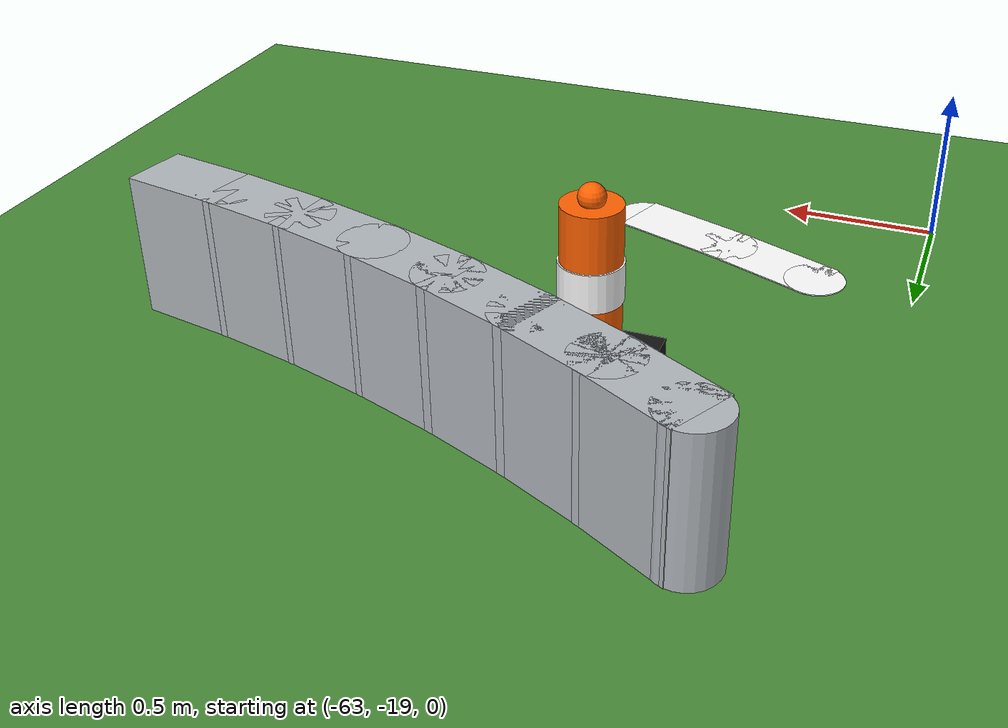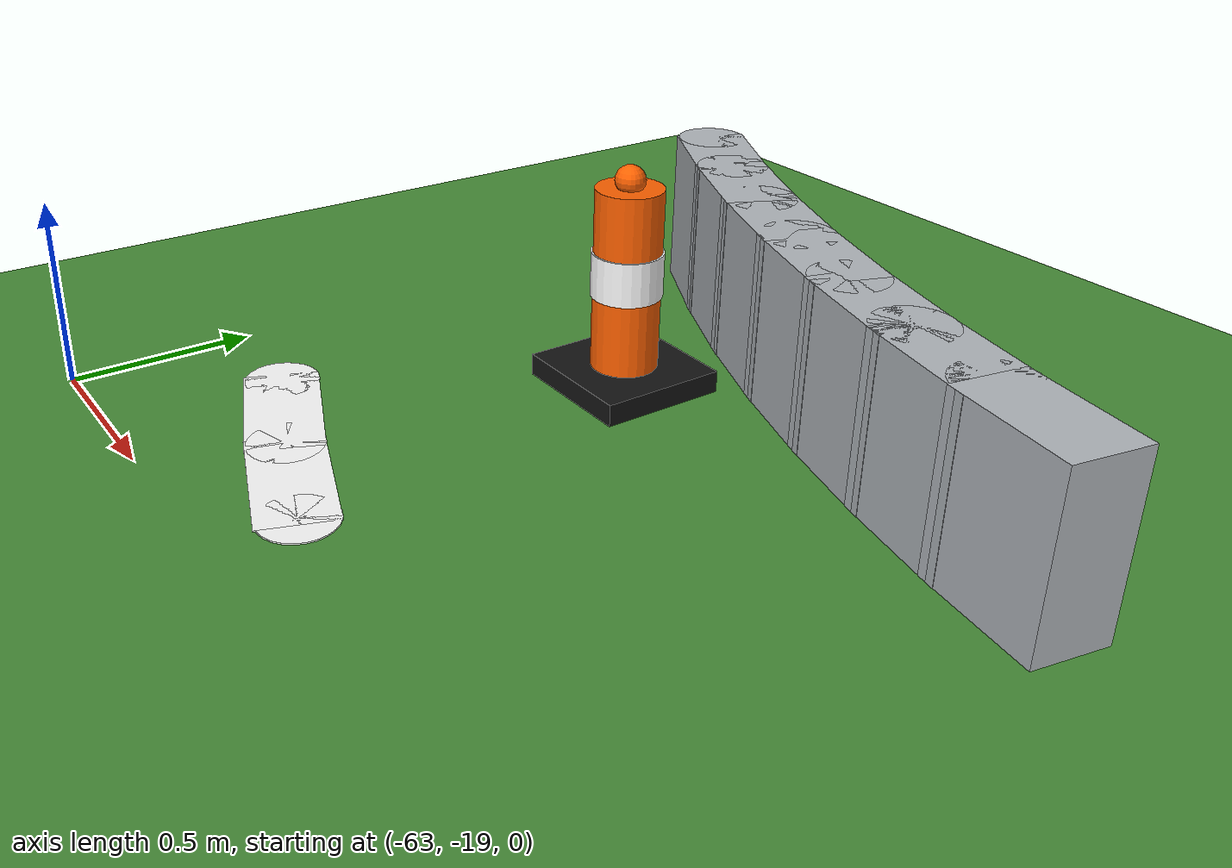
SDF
<sdf version="1.6">
 <world name="sem_silesia_ring_2026">
  <model name="ground_plane">
   <static>true</static>
   <link name="link">
    <collision name="collision">
     <geometry><plane><normal>0 0 1</normal><size>600 600</size></plane></geometry>
     <surface><friction><ode><mu>0.6</mu><mu2>0.6</mu2></ode></friction></surface>
    </collision>
    <visual name="visual">
     <geometry><plane><normal>0 0 1</normal><size>600 600</size></plane></geometry>
     <material><ambient>0.28 0.55 0.22 1</ambient><diffuse>0.28 0.55 0.22 1</diffuse></material>
    </visual>
   </link>
  </model>
  <model name="wl_Li_jnt52">
   <static>true</static>
   <pose>-62.6845 -18.5294 0.0050 0 0 0</pose>
   <link name="link">
    <visual name="v">
     <geometry><cylinder><radius>0.1000</radius><length>0.0040</length></cylinder></geometry>
     <material><ambient>1 1 1 1</ambient><diffuse>1 1 1 1</diffuse></material>
    </visual>
    <collision name="c">
     <geometry><cylinder><radius>0.1000</radius><length>0.0040</length></cylinder></geometry>
     <surface><friction><ode><mu>0.9</mu><mu2>0.9</mu2></ode></friction></surface>
    </collision>
   </link>
  </model>
  <model name="wl_Li_s52">
   <static>true</static>
   <pose>-62.5257 -18.5976 0.0050 0 0 5.8905</pose>
   <link name="link">
    <visual name="v">
     <geometry><box><size>0.4008 0.2000 0.0040</size></box></geometry>
     <material><ambient>1 1 1 1</ambient><diffuse>1 1 1 1</diffuse></material>
    </visual>
    <collision name="c">
     <geometry><box><size>0.4008 0.2000 0.0040</size></box></geometry>
     <surface><friction><ode><mu>0.9</mu><mu2>0.9</mu2></ode></friction></surface>
    </collision>
   </link>
  </model>
  <model name="wl_Li_jnt53">
   <static>true</static>
   <pose>-62.3652 -18.6616 0.0050 0 0 0</pose>
   <link name="link">
    <visual name="v">
     <geometry><cylinder><radius>0.1000</radius><length>0.0040</length></cylinder></geometry>
     <material><ambient>1 1 1 1</ambient><diffuse>1 1 1 1</diffuse></material>
    </visual>
    <collision name="c">
     <geometry><cylinder><radius>0.1000</radius><length>0.0040</length></cylinder></geometry>
     <surface><friction><ode><mu>0.9</mu><mu2>0.9</mu2></ode></friction></surface>
    </collision>
   </link>
  </model>
  <model name="wl_Li_s53">
   <static>true</static>
   <pose>-62.2031 -18.7214 0.0050 0 0 5.9428</pose>
   <link name="link">
    <visual name="v">
     <geometry><box><size>0.4008 0.2000 0.0040</size></box></geometry>
     <material><ambient>1 1 1 1</ambient><diffuse>1 1 1 1</diffuse></material>
    </visual>
    <collision name="c">
     <geometry><box><size>0.4008 0.2000 0.0040</size></box></geometry>
     <surface><friction><ode><mu>0.9</mu><mu2>0.9</mu2></ode></friction></surface>
    </collision>
   </link>
  </model>
  <model name="wl_Li_jnt54">
   <static>true</static>
   <pose>-62.0395 -18.7770 0.0050 0 0 0</pose>
   <link name="link">
    <visual name="v">
     <geometry><cylinder><radius>0.1000</radius><length>0.0040</length></cylinder></geometry>
     <material><ambient>1 1 1 1</ambient><diffuse>1 1 1 1</diffuse></material>
    </visual>
    <collision name="c">
     <geometry><cylinder><radius>0.1000</radius><length>0.0040</length></cylinder></geometry>
     <surface><friction><ode><mu>0.9</mu><mu2>0.9</mu2></ode></friction></surface>
    </collision>
   </link>
  </model>
  <model name="arm_Li_jnt50">
   <static>true</static>
   <pose>-62.6500 -17.0899 0.2250 0 0 0</pose>
   <link name="link">
    <visual name="v">
     <geometry><cylinder><radius>0.1000</radius><length>0.4500</length></cylinder></geometry>
     <material><ambient>0.70 0.72 0.74 1</ambient><diffuse>0.70 0.72 0.74 1</diffuse></material>
    </visual>
    <collision name="c">
     <geometry><cylinder><radius>0.1000</radius><length>0.4500</length></cylinder></geometry>
     <surface><friction><ode><mu>0.9</mu><mu2>0.9</mu2></ode></friction></surface>
    </collision>
   </link>
  </model>
  <model name="arm_Li_s50">
   <static>true</static>
   <pose>-62.5289 -17.1577 0.2250 0 0 5.7858</pose>
   <link name="link">
    <visual name="v">
     <geometry><box><size>0.3327 0.2000 0.4500</size></box></geometry>
     <material><ambient>0.70 0.72 0.74 1</ambient><diffuse>0.70 0.72 0.74 1</diffuse></material>
    </visual>
    <collision name="c">
     <geometry><box><size>0.3327 0.2000 0.4500</size></box></geometry>
     <surface><friction><ode><mu>0.9</mu><mu2>0.9</mu2></ode></friction></surface>
    </collision>
   </link>
  </model>
  <model name="arm_Li_jnt51">
   <static>true</static>
   <pose>-62.4061 -17.2223 0.2250 0 0 0</pose>
   <link name="link">
    <visual name="v">
     <geometry><cylinder><radius>0.1000</radius><length>0.4500</length></cylinder></geometry>
     <material><ambient>0.70 0.72 0.74 1</ambient><diffuse>0.70 0.72 0.74 1</diffuse></material>
    </visual>
    <collision name="c">
     <geometry><cylinder><radius>0.1000</radius><length>0.4500</length></cylinder></geometry>
     <surface><friction><ode><mu>0.9</mu><mu2>0.9</mu2></ode></friction></surface>
    </collision>
   </link>
  </model>
  <model name="arm_Li_s51">
   <static>true</static>
   <pose>-62.2817 -17.2837 0.2250 0 0 5.8381</pose>
   <link name="link">
    <visual name="v">
     <geometry><box><size>0.3327 0.2000 0.4500</size></box></geometry>
     <material><ambient>0.70 0.72 0.74 1</ambient><diffuse>0.70 0.72 0.74 1</diffuse></material>
    </visual>
    <collision name="c">
     <geometry><box><size>0.3327 0.2000 0.4500</size></box></geometry>
     <surface><friction><ode><mu>0.9</mu><mu2>0.9</mu2></ode></friction></surface>
    </collision>
   </link>
  </model>
  <model name="arm_Li_jnt52">
   <static>true</static>
   <pose>-62.1557 -17.3418 0.2250 0 0 0</pose>
   <link name="link">
    <visual name="v">
     <geometry><cylinder><radius>0.1000</radius><length>0.4500</length></cylinder></geometry>
     <material><ambient>0.70 0.72 0.74 1</ambient><diffuse>0.70 0.72 0.74 1</diffuse></material>
    </visual>
    <collision name="c">
     <geometry><cylinder><radius>0.1000</radius><length>0.4500</length></cylinder></geometry>
     <surface><friction><ode><mu>0.9</mu><mu2>0.9</mu2></ode></friction></surface>
    </collision>
   </link>
  </model>
  <model name="arm_Li_s52">
   <static>true</static>
   <pose>-62.0282 -17.3966 0.2250 0 0 5.8905</pose>
   <link name="link">
    <visual name="v">
     <geometry><box><size>0.3327 0.2000 0.4500</size></box></geometry>
     <material><ambient>0.70 0.72 0.74 1</ambient><diffuse>0.70 0.72 0.74 1</diffuse></material>
    </visual>
    <collision name="c">
     <geometry><box><size>0.3327 0.2000 0.4500</size></box></geometry>
     <surface><friction><ode><mu>0.9</mu><mu2>0.9</mu2></ode></friction></surface>
    </collision>
   </link>
  </model>
  <model name="arm_Li_jnt53">
   <static>true</static>
   <pose>-61.8994 -17.4480 0.2250 0 0 0</pose>
   <link name="link">
    <visual name="v">
     <geometry><cylinder><radius>0.1000</radius><length>0.4500</length></cylinder></geometry>
     <material><ambient>0.70 0.72 0.74 1</ambient><diffuse>0.70 0.72 0.74 1</diffuse></material>
    </visual>
    <collision name="c">
     <geometry><cylinder><radius>0.1000</radius><length>0.4500</length></cylinder></geometry>
     <surface><friction><ode><mu>0.9</mu><mu2>0.9</mu2></ode></friction></surface>
    </collision>
   </link>
  </model>
  <model name="arm_Li_s53">
   <static>true</static>
   <pose>-61.7692 -17.4960 0.2250 0 0 5.9428</pose>
   <link name="link">
    <visual name="v">
     <geometry><box><size>0.3327 0.2000 0.4500</size></box></geometry>
     <material><ambient>0.70 0.72 0.74 1</ambient><diffuse>0.70 0.72 0.74 1</diffuse></material>
    </visual>
    <collision name="c">
     <geometry><box><size>0.3327 0.2000 0.4500</size></box></geometry>
     <surface><friction><ode><mu>0.9</mu><mu2>0.9</mu2></ode></friction></surface>
    </collision>
   </link>
  </model>
  <model name="arm_Li_jnt54">
   <static>true</static>
   <pose>-61.6378 -17.5406 0.2250 0 0 0</pose>
   <link name="link">
    <visual name="v">
     <geometry><cylinder><radius>0.1000</radius><length>0.4500</length></cylinder></geometry>
     <material><ambient>0.70 0.72 0.74 1</ambient><diffuse>0.70 0.72 0.74 1</diffuse></material>
    </visual>
    <collision name="c">
     <geometry><cylinder><radius>0.1000</radius><length>0.4500</length></cylinder></geometry>
     <surface><friction><ode><mu>0.9</mu><mu2>0.9</mu2></ode></friction></surface>
    </collision>
   </link>
  </model>
  <model name="arm_Li_s54">
   <static>true</static>
   <pose>-61.5053 -17.5817 0.2250 0 0 5.9952</pose>
   <link name="link">
    <visual name="v">
     <geometry><box><size>0.3327 0.2000 0.4500</size></box></geometry>
     <material><ambient>0.70 0.72 0.74 1</ambient><diffuse>0.70 0.72 0.74 1</diffuse></material>
    </visual>
    <collision name="c">
     <geometry><box><size>0.3327 0.2000 0.4500</size></box></geometry>
     <surface><friction><ode><mu>0.9</mu><mu2>0.9</mu2></ode></friction></surface>
    </collision>
   </link>
  </model>
  <model name="arm_Li_jnt55">
   <static>true</static>
   <pose>-61.3717 -17.6194 0.2250 0 0 0</pose>
   <link name="link">
    <visual name="v">
     <geometry><cylinder><radius>0.1000</radius><length>0.4500</length></cylinder></geometry>
     <material><ambient>0.70 0.72 0.74 1</ambient><diffuse>0.70 0.72 0.74 1</diffuse></material>
    </visual>
    <collision name="c">
     <geometry><cylinder><radius>0.1000</radius><length>0.4500</length></cylinder></geometry>
     <surface><friction><ode><mu>0.9</mu><mu2>0.9</mu2></ode></friction></surface>
    </collision>
   </link>
  </model>
  <model name="arm_Li_s55">
   <static>true</static>
   <pose>-61.2373 -17.6536 0.2250 0 0 6.0476</pose>
   <link name="link">
    <visual name="v">
     <geometry><box><size>0.3327 0.2000 0.4500</size></box></geometry>
     <material><ambient>0.70 0.72 0.74 1</ambient><diffuse>0.70 0.72 0.74 1</diffuse></material>
    </visual>
    <collision name="c">
     <geometry><box><size>0.3327 0.2000 0.4500</size></box></geometry>
     <surface><friction><ode><mu>0.9</mu><mu2>0.9</mu2></ode></friction></surface>
    </collision>
   </link>
  </model>
  <model name="arm_Li_jnt56">
   <static>true</static>
   <pose>-61.1019 -17.6842 0.2250 0 0 0</pose>
   <link name="link">
    <visual name="v">
     <geometry><cylinder><radius>0.1000</radius><length>0.4500</length></cylinder></geometry>
     <material><ambient>0.70 0.72 0.74 1</ambient><diffuse>0.70 0.72 0.74 1</diffuse></material>
    </visual>
    <collision name="c">
     <geometry><cylinder><radius>0.1000</radius><length>0.4500</length></cylinder></geometry>
     <surface><friction><ode><mu>0.9</mu><mu2>0.9</mu2></ode></friction></surface>
    </collision>
   </link>
  </model>
  <model name="arm_Li_s56">
   <static>true</static>
   <pose>-60.9658 -17.7113 0.2250 0 0 6.0999</pose>
   <link name="link">
    <visual name="v">
     <geometry><box><size>0.3327 0.2000 0.4500</size></box></geometry>
     <material><ambient>0.70 0.72 0.74 1</ambient><diffuse>0.70 0.72 0.74 1</diffuse></material>
    </visual>
    <collision name="c">
     <geometry><box><size>0.3327 0.2000 0.4500</size></box></geometry>
     <surface><friction><ode><mu>0.9</mu><mu2>0.9</mu2></ode></friction></surface>
    </collision>
   </link>
  </model>
  <model name="cn_Li_7">
   <static>true</static>
   <pose>-62.1813 -17.7661 0 0 0 0</pose>
   <link name="link">
    <visual name="base">
     <pose>0 0 0.03 0 0 0</pose>
     <geometry><box><size>0.35 0.35 0.06</size></box></geometry>
     <material><ambient>0.08 0.08 0.08 1</ambient><diffuse>0.08 0.08 0.08 1</diffuse></material>
    </visual>
    <visual name="body">
     <pose>0 0 0.30 0 0 0</pose>
     <geometry><cylinder><radius>0.09</radius><length>0.50</length></cylinder></geometry>
     <material><ambient>1.0 0.38 0.0 1</ambient><diffuse>1.0 0.38 0.0 1</diffuse></material>
    </visual>
    <visual name="stripe">
     <pose>0 0 0.32 0 0 0</pose>
     <geometry><cylinder><radius>0.095</radius><length>0.12</length></cylinder></geometry>
     <material><ambient>1 1 1 1</ambient><diffuse>1 1 1 1</diffuse></material>
    </visual>
    <visual name="tip">
     <pose>0 0 0.57 0 0 0</pose>
     <geometry><sphere><radius>0.04</radius></sphere></geometry>
     <material><ambient>1.0 0.38 0.0 1</ambient><diffuse>1.0 0.38 0.0 1</diffuse></material>
    </visual>
    <collision name="c">
     <pose>0 0 0.28 0 0 0</pose>
     <geometry><cylinder><radius>0.09</radius><length>0.56</length></cylinder></geometry>
    </collision>
   </link>
  </model>
 </world>
</sdf>
